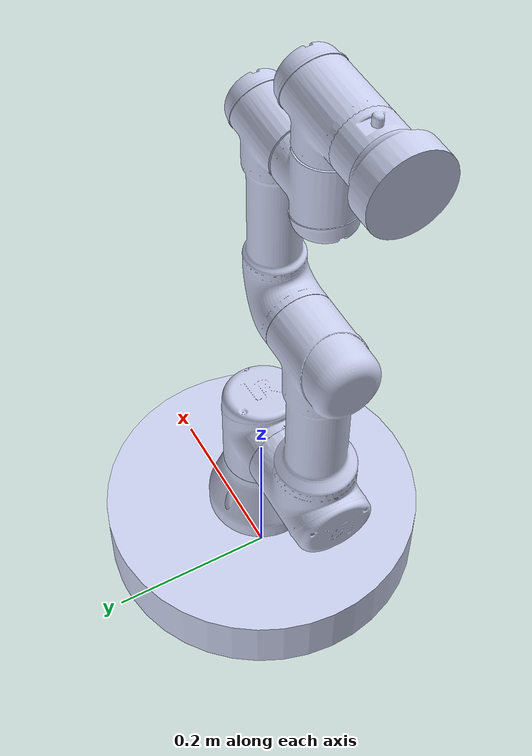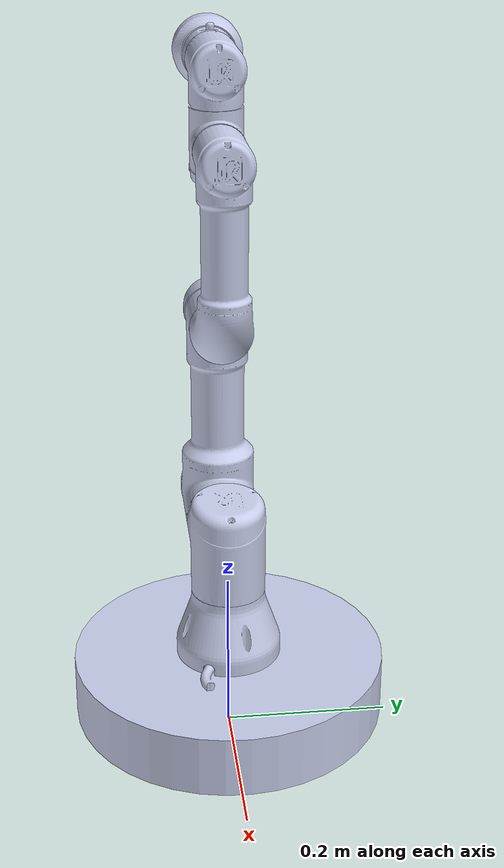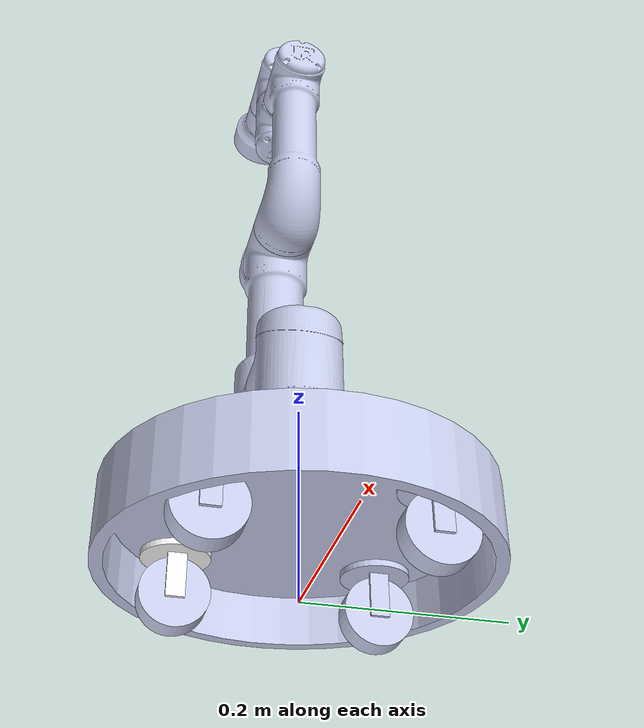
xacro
<?xml version="1.0" ?>
<robot
  name="mobile_manipulator" xmlns:xacro="http://ros.org/wiki/xacro">
  <link name="dummy">
  </link>
  <joint name="dummy_joint" type="fixed">
    <parent link="dummy"/>
    <child link="base_link"/>
  </joint>
  <link
    name="base_link">
    <inertial>
      <origin
        xyz="0.00010622 0.093916 4.9338E-05"
        rpy="0 0 0" />
      <mass
        value="15.0" />
      <inertia
        ixx="0.160894"
        ixy="12.2355E-06"
        ixz="20.6343E-06"
        iyy="0.288892"
        iyz="4.2996E-06"
        izz="0.160887" />
    </inertial>
    <visual>
      <origin
        xyz="0 0 0"
        rpy="0 0 0" />
      <geometry>
        <mesh
          filename="package://mobile_manipulator/meshes/base_link.STL" />
      </geometry>
      <material
        name="">
        <color
          rgba="0.79216 0.81961 0.93333 1" />
      </material>
    </visual>
    <collision>
      <origin
        xyz="0 0 0"
        rpy="0 0 0" />
      <geometry>
        <mesh
          filename="package://mobile_manipulator/meshes/base_link.STL" />
      </geometry>
    </collision>
  </link>
  <link
    name="ur_link1">
    <inertial>
      <origin
        xyz="-1.1686E-06 -0.0073375 0.05429"
        rpy="0 0 0" />
      <mass
        value="0.075599" />
      <inertia
        ixx="0.001069"
        ixy="8.9098E-08"
        ixz="1.1225E-07"
        iyy="0.00099027"
        iyz="0.00013107"
        izz="0.00090659" />
    </inertial>
    <visual>
      <origin
        xyz="0 0 0"
        rpy="0 0 0" />
      <geometry>
        <mesh
          filename="package://mobile_manipulator/meshes/ur_link1.STL" />
      </geometry>
      <material
        name="">
        <color
          rgba="0.79216 0.81961 0.93333 1" />
      </material>
    </visual>
    <collision>
      <origin
        xyz="0 0 0"
        rpy="0 0 0" />
      <geometry>
        <mesh
          filename="package://mobile_manipulator/meshes/ur_link1.STL" />
      </geometry>
    </collision>
  </link>
  <joint
    name="ur_joint1"
    type="continuous">
    <origin
      xyz="0 0 0.19083"
      rpy="0 0 -1.5708" />
    <parent
      link="base_link" />
    <child
      link="ur_link1" />
    <axis
      xyz="0 0 1" />
  </joint>
  <link
    name="ur_link2">
    <inertial>
      <origin
        xyz="-2.72775473316338E-06 0.105689190962758 -0.0625965049844405"
        rpy="0 0 0" />
      <mass
        value=".180198342548997" />
      <inertia
        ixx="0.00264979451361119"
        ixy="1.02106153655479E-07"
        ixz="9.40161921197151E-08"
        iyy="0.00167012474397332"
        iyz="8.11148655835377E-05"
        izz="0.00251747167515764" />
    </inertial>
    <visual>
      <origin
        xyz="0 0 0"
        rpy="0 0 0" />
      <geometry>
        <mesh
          filename="package://mobile_manipulator/meshes/ur_link2.STL" />
      </geometry>
      <material
        name="">
        <color
          rgba="0.792156862745098 0.819607843137255 0.933333333333333 1" />
      </material>
    </visual>
    <collision>
      <origin
        xyz="0 0 0"
        rpy="0 0 0" />
      <geometry>
        <mesh
          filename="package://mobile_manipulator/meshes/ur_link2.STL" />
      </geometry>
    </collision>
  </link>
  <joint
    name="ur_joint2"
    type="continuous">
    <origin
      xyz="0 -0.054 0.06585"
      rpy="1.5708 0 3.1416" />
    <parent
      link="ur_link1" />
    <child
      link="ur_link2" />
    <axis
      xyz="0 0 -1" />
  </joint>
  <link
    name="ur_link3">
    <inertial>
      <origin
        xyz="1.42516266435917E-06 0.111180503455293 0.0222120942662305"
        rpy="0 0 0" />
      <mass
        value="0.0962304717786686" />
      <inertia
        ixx="0.00107269450235351"
        ixy="1.2579385521768E-08"
        ixz="2.00415572357587E-09"
        iyy="0.000542642851910322"
        iyz="4.61333899514844E-05"
        izz="0.00101487910380245" />
    </inertial>
    <visual>
      <origin
        xyz="0 0 0"
        rpy="0 0 0" />
      <geometry>
        <mesh
          filename="package://mobile_manipulator/meshes/ur_link3.STL" />
      </geometry>
      <material
        name="">
        <color
          rgba="0.792156862745098 0.819607843137255 0.933333333333333 1" />
      </material>
    </visual>
    <collision>
      <origin
        xyz="0 0 0"
        rpy="0 0 0" />
      <geometry>
        <mesh
          filename="package://mobile_manipulator/meshes/ur_link3.STL" />
      </geometry>
    </collision>
  </link>
  <joint
    name="ur_joint3"
    type="continuous">
    <origin
      xyz="0 0.24365 0"
      rpy="0 0 0" />
    <parent
      link="ur_link2" />
    <child
      link="ur_link3" />
    <axis
      xyz="0 0 1" />
  </joint>
  <link
    name="ur_link4">
    <inertial>
      <origin
        xyz="-1.54664952694528E-07 -0.000517517328520678 -0.0385790737239192"
        rpy="0 0 0" />
      <mass
        value="0.0325202204660325" />
      <inertia
        ixx="0.000226230418109377"
        ixy="5.53256916807704E-10"
        ixz="1.09314832190794E-10"
        iyy="0.000199107649368955"
        iyz="1.83392535226262E-05"
        izz="0.000194591889649777" />
    </inertial>
    <visual>
      <origin
        xyz="0 0 0"
        rpy="0 0 0" />
      <geometry>
        <mesh
          filename="package://mobile_manipulator/meshes/ur_link4.STL" />
      </geometry>
      <material
        name="">
        <color
          rgba="0.792156862745098 0.819607843137255 0.933333333333333 1" />
      </material>
    </visual>
    <collision>
      <origin
        xyz="0 0 0"
        rpy="0 0 0" />
      <geometry>
        <mesh
          filename="package://mobile_manipulator/meshes/ur_link4.STL" />
      </geometry>
    </collision>
  </link>
  <joint
    name="ur_joint4"
    type="continuous">
    <origin
      xyz="0 0.213 -0.015239"
      rpy="0 0 0" />
    <parent
      link="ur_link3" />
    <child
      link="ur_link4" />
    <axis
      xyz="0 0 -1" />
  </joint>
  <link
    name="ur_link5">
    <inertial>
      <origin
        xyz="3.6946597298589E-06 8.92340309935763E-05 0.038633009042455"
        rpy="0 0 0" />
      <mass
        value="0.0328191721532824" />
      <inertia
        ixx="0.000227612478846299"
        ixy="2.38322967569763E-09"
        ixz="3.25800238926714E-09"
        iyy="0.000201866554543042"
        iyz="1.83392858733668E-05"
        izz="0.000195999056894894" />
    </inertial>
    <visual>
      <origin
        xyz="0 0 0"
        rpy="0 0 0" />
      <geometry>
        <mesh
          filename="package://mobile_manipulator/meshes/ur_link5.STL" />
      </geometry>
      <material
        name="">
        <color
          rgba="0.792156862745098 0.819607843137255 0.933333333333333 1" />
      </material>
    </visual>
    <collision>
      <origin
        xyz="0 0 0"
        rpy="0 0 0" />
      <geometry>
        <mesh
          filename="package://mobile_manipulator/meshes/ur_link5.STL" />
      </geometry>
    </collision>
  </link>
  <joint
    name="ur_joint5"
    type="continuous">
    <origin
      xyz="0 0.0426 -0.0445"
      rpy="1.5708 0 3.1415" />
    <parent
      link="ur_link4" />
    <child
      link="ur_link5" />
    <axis
      xyz="0 0 1" />
  </joint>
  <link
    name="ur_link6">
    <inertial>
      <origin
        xyz="5.77073541925559E-11 -0.000106055688466555 -0.0189845667010021"
        rpy="0 0 0" />
      <mass
        value="0.011236569554859" />
      <inertia
        ixx="4.10643963272602E-05"
        ixy="3.77185696181121E-13"
        ixz="6.45137995347095E-13"
        iyy="4.12798033286199E-05"
        iyz="1.03226516512007E-07"
        izz="5.62853958723767E-05" />
    </inertial>
    <visual>
      <origin
        xyz="0 0 0"
        rpy="0 0 0" />
      <geometry>
        <mesh
          filename="package://mobile_manipulator/meshes/ur_link6.STL" />
      </geometry>
      <material
        name="">
        <color
          rgba="0.792156862745098 0.819607843137255 0.933333333333333 1" />
      </material>
    </visual>
    <collision>
      <origin
        xyz="0 0 0"
        rpy="0 0 0" />
      <geometry>
        <mesh
          filename="package://mobile_manipulator/meshes/ur_link6.STL" />
      </geometry>
    </collision>
  </link>
  <joint
    name="ur_joint6"
    type="continuous">
    <origin
      xyz="0 -0.0426 0.0445"
      rpy="1.5708 0 3.1416" />
    <parent
      link="ur_link5" />
    <child
      link="ur_link6" />
    <axis
      xyz="0 0 -1" />
  </joint>
  <link
    name="vac_gripper">
    <inertial>
      <origin
        xyz="8.12283862394736E-09 0.0199997106778893 3.27978920902574E-07"
        rpy="0 0 0" />
      <mass
        value="0.0184335337413634" />
      <inertia
        ixx="9.34297331535443E-05"
        ixy="4.71675041882134E-11"
        ixz="1.11384552268069E-10"
        iyy="0.000147183153344922"
        iyz="1.21554863910265E-10"
        izz="9.34277869398142E-05" />
    </inertial>
    <visual>
      <origin
        xyz="0 0 0"
        rpy="0 0 0" />
      <geometry>
        <mesh
          filename="package://mobile_manipulator/meshes/vac_gripper.STL" />
      </geometry>
      <material
        name="">
        <color
          rgba="0.792156862745098 0.819607843137255 0.933333333333333 1" />
      </material>
    </visual>
    <collision>
      <origin
        xyz="0 0 0"
        rpy="0 0 0" />
      <geometry>
        <mesh
          filename="package://mobile_manipulator/meshes/vac_gripper.STL" />
      </geometry>
    </collision>
  </link>
  <joint
    name="gripper_joint"
    type="revolute">
    <origin
      xyz="0 0 -0.039"
      rpy="-1.5708 0 1.5708" />
    <parent
      link="ur_link6" />
    <child
      link="vac_gripper" />
    <axis
      xyz="0 0 1" />
    <limit
    lower="0.000"
    upper="0.000"
    effort="0"
    velocity="0" />
  </joint>
  <link
    name="fr_steer_link">
    <inertial>
      <origin
        xyz="0 0.0119006090942748 1.38777878078145E-17"
        rpy="0 0 0" />
      <mass
        value="0.0340030421650543" />
      <inertia
        ixx="1.5879792611512E-05"
        ixy="-2.01489123035579E-21"
        ixz="-3.23846527850222E-22"
        iyy="1.66248823688066E-05"
        iyz="6.38337858174192E-22"
        izz="1.72093553828835E-05" />
    </inertial>
    <visual>
      <origin
        xyz="0 0 0"
        rpy="0 0 0" />
      <geometry>
        <mesh
          filename="package://mobile_manipulator/meshes/fr_steer_link.STL" />
      </geometry>
      <material
        name="">
        <color
          rgba="0.792156862745098 0.819607843137255 0.933333333333333 1" />
      </material>
    </visual>
    <collision>
      <origin
        xyz="0 0 0"
        rpy="0 0 0" />
      <geometry>
        <mesh
          filename="package://mobile_manipulator/meshes/fr_steer_link.STL" />
      </geometry>
    </collision>
  </link>
  <joint
    name="fr_steer_joint"
    type="revolute">
    <origin
      xyz="0.09525 0.1016 0.079375"
      rpy="-1.5708 0 3.1416" />
    <parent
      link="base_link" />
    <child
      link="fr_steer_link" />
    <axis
      xyz="0 -1 0" />
    <limit
      lower="-1.571"
      upper="1.571"
      effort="0"
      velocity="0" />
  </joint>
  <link
    name="fr_wheel">
    <inertial>
      <origin
        xyz="0 -1.38777878078145E-17 0"
        rpy="0 0 0" />
      <mass
        value="5.0" />
      <inertia
        ixx="300.47078445585542E-02"
        ixy="-200.30964744386833E-18"
        ixz="200.5410988417629E-18"
        iyy="500.92958620020858E-02"
        iyz="-100.87781254151537E-17"
        izz="300.47078445585542E-02" />
    </inertial>
    <visual>
      <origin
        xyz="0 0 0"
        rpy="0 0 0" />
      <geometry>
        <mesh
          filename="package://mobile_manipulator/meshes/fr_wheel.STL" />
      </geometry>
      <material
        name="">
        <color
          rgba="0.792156862745098 0.819607843137255 0.933333333333333 1" />
      </material>
    </visual>
    <collision>
      <origin
        xyz="0 0 0"
        rpy="0 0 0" />
      <geometry>
        <mesh
          filename="package://mobile_manipulator/meshes/fr_wheel.STL" />
      </geometry>
    </collision>
  </link>
  <joint
    name="fr_wheel_joint"
    type="continuous">
    <origin
      xyz="0 0.04445 0"
      rpy="0 1.0658 -1.5708" />
    <parent
      link="fr_steer_link" />
    <child
      link="fr_wheel" />
    <axis
      xyz="0 1 0" />
  </joint>
  <link
    name="fl_steer_link">
    <inertial>
      <origin
        xyz="1.38777878078145E-17 0.0119006090942748 -1.38777878078145E-17"
        rpy="0 0 0" />
      <mass
        value="0.0340030421650542" />
      <inertia
        ixx="1.5879792611512E-05"
        ixy="-3.62355206050052E-21"
        ixz="-1.26152949228295E-22"
        iyy="1.66248823688066E-05"
        iyz="3.54121783999717E-21"
        izz="1.72093553828835E-05" />
    </inertial>
    <visual>
      <origin
        xyz="0 0 0"
        rpy="0 0 0" />
      <geometry>
        <mesh
          filename="package://mobile_manipulator/meshes/fl_steer_link.STL" />
      </geometry>
      <material
        name="">
        <color
          rgba="0.792156862745098 0.819607843137255 0.933333333333333 1" />
      </material>
    </visual>
    <collision>
      <origin
        xyz="0 0 0"
        rpy="0 0 0" />
      <geometry>
        <mesh
          filename="package://mobile_manipulator/meshes/fl_steer_link.STL" />
      </geometry>
    </collision>
  </link>
  <joint
    name="fl_steer_joint"
    type="revolute">
    <origin
      xyz="-0.09525 0.1016 0.079375"
      rpy="-1.5708 0 0" />
    <parent
      link="base_link" />
    <child
      link="fl_steer_link" />
    <axis
      xyz="0 -1 0" />
    <limit
      lower="-1.571"
      upper="1.571"
      effort="0"
      velocity="0" />
  </joint>
  <link
    name="fl_wheel">
    <inertial>
      <origin
        xyz="2.22738494315422E-15 -1.38777878078145E-17 8.18789480661053E-16"
        rpy="0 0 0" />
      <mass
        value="5.0" />
      <inertia
        ixx="300.47078445585543E-02"
        ixy="-400.43454143849907E-21"
        ixz="-200.11758236813575E-19"
        iyy="500.92958620020859E-02"
        iyz="200.42728840168072E-18"
        izz="300.47078445585543E-02" />
    </inertial>
    <visual>
      <origin
        xyz="0 0 0"
        rpy="0 0 0" />
      <geometry>
        <mesh
          filename="package://mobile_manipulator/meshes/fl_wheel.STL" />
      </geometry>
      <material
        name="">
        <color
          rgba="0.792156862745098 0.819607843137255 0.933333333333333 1" />
      </material>
    </visual>
    <collision>
      <origin
        xyz="0 0 0"
        rpy="0 0 0" />
      <geometry>
        <mesh
          filename="package://mobile_manipulator/meshes/fl_wheel.STL" />
      </geometry>
    </collision>
  </link>
  <joint
    name="fl_wheel_joint"
    type="continuous">
    <origin
      xyz="0 0.04445 0"
      rpy="0 0.018681 1.5708" />
    <parent
      link="fl_steer_link" />
    <child
      link="fl_wheel" />
    <axis
      xyz="0 1 0" />
  </joint>
  <link
    name="br_steer_link">
    <inertial>
      <origin
        xyz="1.38777878078145E-17 0.0119006090942748 1.38777878078145E-17"
        rpy="0 0 0" />
      <mass
        value="0.0340030421650543" />
      <inertia
        ixx="1.5879792611512E-05"
        ixy="-2.73248998539391E-21"
        ixz="2.67028011644598E-22"
        iyy="1.66248823688066E-05"
        iyz="-2.43114144305083E-21"
        izz="1.72093553828835E-05" />
    </inertial>
    <visual>
      <origin
        xyz="0 0 0"
        rpy="0 0 0" />
      <geometry>
        <mesh
          filename="package://mobile_manipulator/meshes/br_steer_link.STL" />
      </geometry>
      <material
        name="">
        <color
          rgba="0.792156862745098 0.819607843137255 0.933333333333333 1" />
      </material>
    </visual>
    <collision>
      <origin
        xyz="0 0 0"
        rpy="0 0 0" />
      <geometry>
        <mesh
          filename="package://mobile_manipulator/meshes/br_steer_link.STL" />
      </geometry>
    </collision>
  </link>
  <joint
    name="br_steer_joint"
    type="fixed">
    <origin
      xyz="0.09525 -0.1016 0.079375"
      rpy="-1.5708 0 0" />
    <parent
      link="base_link" />
    <child
      link="br_steer_link" />
    <axis
      xyz="0 0 0" />
  </joint>
  <link
    name="br_wheel">
    <inertial>
      <origin
        xyz="2.63677968348475E-15 0 -7.63278329429795E-16"
        rpy="0 0 0" />
      <mass
        value="5.0" />
      <inertia
        ixx="300.47078445585543E-02"
        ixy="200.72951171950833E-18"
        ixz="-300.17637355220363E-19"
        iyy="500.92958620020859E-02"
        iyz="-600.61609656112337E-18"
        izz="300.47078445585543E-02" />
    </inertial>
    <visual>
      <origin
        xyz="0 0 0"
        rpy="0 0 0" />
      <geometry>
        <mesh
          filename="package://mobile_manipulator/meshes/br_wheel.STL" />
      </geometry>
      <material
        name="">
        <color
          rgba="0.792156862745098 0.819607843137255 0.933333333333333 1" />
      </material>
    </visual>
    <collision>
      <origin
        xyz="0 0 0"
        rpy="0 0 0" />
      <geometry>
        <mesh
          filename="package://mobile_manipulator/meshes/br_wheel.STL" />
      </geometry>
    </collision>
  </link>
  <joint
    name="br_wheel_joint"
    type="continuous">
    <origin
      xyz="0 0.04445 0"
      rpy="3.1416 -0.039681 -1.5708" />
    <parent
      link="br_steer_link" />
    <child
      link="br_wheel" />
    <axis
      xyz="0 1 0" />
  </joint>
  <link
    name="bl_steer_link">
    <inertial>
      <origin
        xyz="0 0 0"
        rpy="0 0 0" />
      <mass
        value="0.0340030421650543" />
      <inertia
        ixx="1.5879792611512E-05"
        ixy="-1.0271E-21"
        ixz="2.281E-22"
        iyy="1.66248823688066E-05"
        iyz="-2.43114144305083E-21"
        izz="1.72093553828835E-05" />
      </inertial>
    <visual>
      <origin
        xyz="0 0 0"
        rpy="0 0 0" />
      <geometry>
        <mesh
          filename="package://mobile_manipulator/meshes/bl_steer_link.STL" />
      </geometry>
      <material
        name="">
        <color
          rgba="1 1 1 1" />
      </material>
    </visual>
    <collision>
      <origin
        xyz="0 0 0"
        rpy="0 0 0" />
      <geometry>
        <mesh
          filename="package://mobile_manipulator/meshes/bl_steer_link.STL" />
      </geometry>
    </collision>
  </link>
  <joint
    name="bl_steer_joint"
    type="fixed">
    <origin
      xyz="-0.09525 -0.1016 0.079375"
      rpy="-1.5708 0 0" />
    <parent
      link="base_link" />
    <child
      link="bl_steer_link" />
    <axis
      xyz="0 0 0" />
  </joint>
  <link
    name="bl_wheel">
    <inertial>
      <origin
        xyz="-2.79637424327461E-15 0 1.52655665885959E-16"
        rpy="0 0 0" />
      <mass
        value="5.0" />
      <inertia
        ixx="300.47078445585543E-02"
        ixy="600.25211086730017E-18"
        ixz="300.17637355220363E-19"
        iyy="500.92958620020859E-02"
        iyz="600.07305770051156E-18"
        izz="300.47078445585543E-02" />
    </inertial>
    <visual>
      <origin
        xyz="0 0 0"
        rpy="0 0 0" />
      <geometry>
        <mesh
          filename="package://mobile_manipulator/meshes/bl_wheel.STL" />
      </geometry>
      <material
        name="">
        <color
          rgba="0.792156862745098 0.819607843137255 0.933333333333333 1" />
      </material>
    </visual>
    <collision>
      <origin
        xyz="0 0 0"
        rpy="0 0 0" />
      <geometry>
        <mesh
          filename="package://mobile_manipulator/meshes/bl_wheel.STL" />
      </geometry>
    </collision>
  </link>
  <joint
    name="bl_wheel_joint"
    type="continuous">
    <origin
      xyz="0 0.04445 0"
      rpy="0 0.27985 1.5708" />
    <parent
      link="bl_steer_link" />
    <child
      link="bl_wheel" />
    <axis
      xyz="0 1 0" />
  </joint>

  <ros2_control name="GazeboSystem" type="system">
    <hardware>
        <plugin>gazebo_ros2_control/GazeboSystem</plugin>
    </hardware>

    # Wheel Velocity Controllers
    <joint name="bl_wheel_joint">
        <command_interface name="velocity">
            <param name="min">-1000.0</param>
            <param name="max">1000.0</param>
        </command_interface>
        <state_interface name="position"/>
        <state_interface name="velocity"/>
    </joint>

    <joint name="br_wheel_joint">
        <command_interface name="velocity">
            <param name="min">-1000.0</param>
            <param name="max">1000.0</param>
        </command_interface>
        <state_interface name="position"/>
        <state_interface name="velocity"/>
    </joint>

    # Steering Position Controllers
    <joint name="fl_steer_joint">
        <command_interface name="position">
            <param name="min">-1.571</param>
            <param name="max">1.571</param>
        </command_interface>
        <state_interface name="position"/>
        <state_interface name="velocity"/>
    </joint>
    <joint name="fr_steer_joint">
        <command_interface name="position">
            <param name="min">-1.571</param>
            <param name="max">1.571</param>
        </command_interface>
        <state_interface name="position"/>
        <state_interface name="velocity"/>
    </joint>

    # UR Joint Position Controllers
    <joint name="ur_joint1">
        <command_interface name="position">
            <param name="min">-3.1415</param>
            <param name="max">3.1415</param>
        </command_interface>
        <state_interface name="position"/>
        <state_interface name="velocity"/>
    </joint>
    <joint name="ur_joint1">
      <command_interface name="velocity">
        <param name="min">-1000</param>
        <param name="max">1000</param>
      </command_interface>
      <state_interface name="position"/>
      <state_interface name="velocity"/>
    </joint>

    <joint name="ur_joint2">
        <command_interface name="position">
            <param name="min">-3.1415</param>
            <param name="max">3.1415</param>
        </command_interface>
        <state_interface name="position"/>
        <state_interface name="velocity"/>
    </joint>
    <joint name="ur_joint2">
      <command_interface name="velocity">
        <param name="min">-1000</param>
        <param name="max">1000</param>
      </command_interface>
      <state_interface name="position"/>
      <state_interface name="velocity"/>
    </joint>

    <joint name="ur_joint3">
        <command_interface name="position">
            <param name="min">-3.1415</param>
            <param name="max">3.1415</param>
        </command_interface>
        <state_interface name="position"/>
        <state_interface name="velocity"/>
    </joint>
    <joint name="ur_joint3">
      <command_interface name="velocity">
        <param name="min">-1000</param>
        <param name="max">1000</param>
      </command_interface>
      <state_interface name="position"/>
      <state_interface name="velocity"/>
    </joint>

    <joint name="ur_joint4">
        <command_interface name="position">
            <param name="min">-3.1415</param>
            <param name="max">3.1415</param>
        </command_interface>
        <state_interface name="position"/>
        <state_interface name="velocity"/>
    </joint>
    <joint name="ur_joint4">
      <command_interface name="velocity">
        <param name="min">-1000</param>
        <param name="max">1000</param>
      </command_interface>
      <state_interface name="position"/>
      <state_interface name="velocity"/>
    </joint>

    <joint name="ur_joint5">
        <command_interface name="position">
            <param name="min">-3.1415</param>
            <param name="max">3.1415</param>
        </command_interface>
        <state_interface name="position"/>
        <state_interface name="velocity"/>
    </joint>
    <joint name="ur_joint5">
      <command_interface name="velocity">
        <param name="min">-1000</param>
        <param name="max">1000</param>
      </command_interface>
      <state_interface name="position"/>
      <state_interface name="velocity"/>
    </joint>

    <joint name="ur_joint6">
        <command_interface name="position">
            <param name="min">-3.1415</param>
            <param name="max">3.1415</param>
        </command_interface>
        <state_interface name="position"/>
        <state_interface name="velocity"/>
    </joint>
    <joint name="ur_joint6">
      <command_interface name="velocity">
        <param name="min">-1000</param>
        <param name="max">1000</param>
      </command_interface>
      <state_interface name="position"/>
      <state_interface name="velocity"/>
    </joint>

  </ros2_control>

  <gazebo>
    <plugin filename="libgazebo_ros2_control.so" name="gazebo_ros2_control">
        <parameters>$(find mobile_manipulator)/config/control.yaml</parameters>
    </plugin>
  </gazebo>

  <gazebo>
    <plugin filename="libodometry_plugin.so" name="odometry_plugin">
      <!-- Name of the link for which the odometry is required -->
      <frame>ur_link1</frame>
      <!-- Any arbitray name for the world frame -->
      <world_frame>fixed_world</world_frame>
    </plugin>
  </gazebo>

  <gazebo reference="base_link">
    <sensor name="lidar" type="ray">
      <pose>0.0 0.19 0.06 0 0 1.57</pose>
      <always_on>true</always_on>
      <visualize>true</visualize>
      <update_rate>5</update_rate>
      <ray>
        <scan>
          <horizontal>
            <samples>360</samples>
            <resolution>1.00000</resolution>
            <min_angle>-0.30</min_angle>
            <max_angle>0.30</max_angle>
          </horizontal>
        </scan>
        <range>
          <min>0.01</min>
          <max>3.5</max>
          <resolution>1.0000</resolution>
        </range>
        <noise>
          <type>gaussian</type>
          <mean>0.0</mean>
          <stddev>0.01</stddev>
        </noise>
      </ray>
      <plugin name="scan" filename="libgazebo_ros_ray_sensor.so">
        <ros>
          <remapping>~/out:=scan</remapping>
        </ros>
        <output_type>sensor_msgs/LaserScan</output_type>
        <frame_name>base_link</frame_name>
      </plugin>
    </sensor>
  </gazebo>

  <gazebo>
    <plugin name='vacuum_gripper' filename='libgazebo_ros_vacuum_gripper.so'>

      <!-- This part can be commented out if not required -->

      <!-- Link associated with gripper -->
      <link_name>vac_gripper</link_name>

      <!-- Max distance to attract entities -->
      <max_distance>0.2</max_distance>

      <!-- List of entities to be not attracted by the gripper -->
      <fixed>ground_plane</fixed>
      <fixed>wall</fixed>

    </plugin>
  </gazebo>

</robot>
